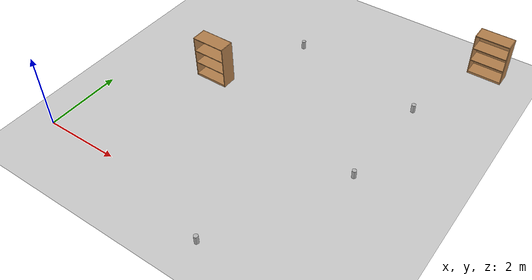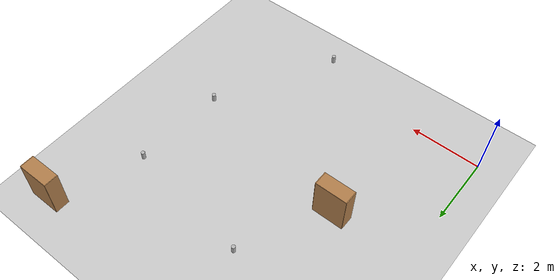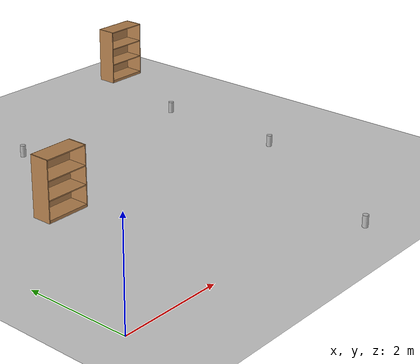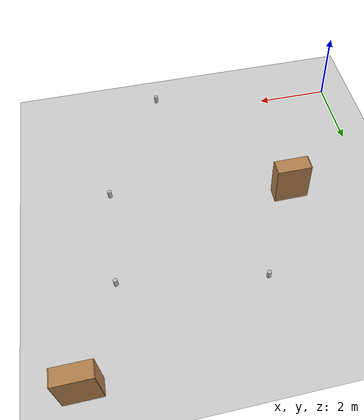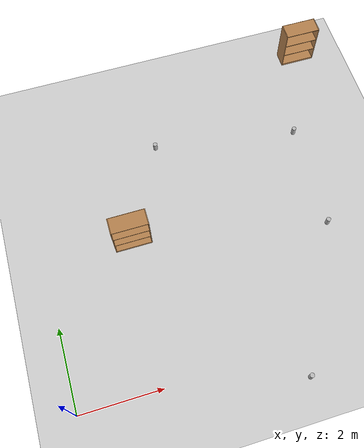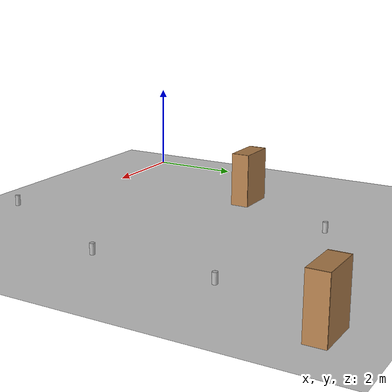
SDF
<sdf version="1.6">
 <world name="default">
  <model name="ground_plane">
   <static>1</static>
   <link name="link">
    <collision name="collision">
     <geometry><plane><normal>0 0 1</normal><size>100 100</size></plane></geometry>
     <surface>
      <contact><collide_bitmask>65535</collide_bitmask></contact>
      <friction><ode><mu>100</mu><mu2>50</mu2></ode></friction>
     </surface>
    </collision>
    <visual name="visual">
     <cast_shadows>0</cast_shadows>
     <geometry><plane><normal>0 0 1</normal><size>100 100</size></plane></geometry>
     <material>
      <script><uri>file://media/materials/scripts/gazebo.material</uri><name>Gazebo/Grey</name></script>
     </material>
    </visual>
   </link>
  </model>
  <model name="bookshelf">
   <static>1</static>
   <link name="link">
    <inertial><mass>1</mass></inertial>
    <collision name="back">
     <pose>0 0.005 0.6 0 -0 0</pose>
     <geometry><box><size>0.9 0.01 1.2</size></box></geometry>
    </collision>
    <visual name="visual1">
     <pose>0 0.005 0.6 0 -0 0</pose>
     <geometry><box><size>0.9 0.01 1.2</size></box></geometry>
     <material>
      <script><uri>file://media/materials/scripts/gazebo.material</uri><name>Gazebo/Wood</name></script>
     </material>
    </visual>
    <collision name="left_side">
     <pose>0.45 -0.195 0.6 0 -0 0</pose>
     <geometry><box><size>0.02 0.4 1.2</size></box></geometry>
    </collision>
    <visual name="visual2">
     <pose>0.45 -0.195 0.6 0 -0 0</pose>
     <geometry><box><size>0.02 0.4 1.2</size></box></geometry>
     <material>
      <script><uri>file://media/materials/scripts/gazebo.material</uri><name>Gazebo/Wood</name></script>
     </material>
    </visual>
    <collision name="right_side">
     <pose>-0.45 -0.195 0.6 0 -0 0</pose>
     <geometry><box><size>0.02 0.4 1.2</size></box></geometry>
    </collision>
    <visual name="visual3">
     <pose>-0.45 -0.195 0.6 0 -0 0</pose>
     <geometry><box><size>0.02 0.4 1.2</size></box></geometry>
     <material>
      <script><uri>file://media/materials/scripts/gazebo.material</uri><name>Gazebo/Wood</name></script>
     </material>
    </visual>
    <collision name="bottom">
     <pose>0 -0.195 0.03 0 -0 0</pose>
     <geometry><box><size>0.88 0.4 0.06</size></box></geometry>
    </collision>
    <visual name="visual4">
     <pose>0 -0.195 0.03 0 -0 0</pose>
     <geometry><box><size>0.88 0.4 0.06</size></box></geometry>
     <material>
      <script><uri>file://media/materials/scripts/gazebo.material</uri><name>Gazebo/Wood</name></script>
     </material>
    </visual>
    <collision name="top">
     <pose>0 -0.195 1.19 0 -0 0</pose>
     <geometry><box><size>0.88 0.4 0.02</size></box></geometry>
    </collision>
    <visual name="visual5">
     <pose>0 -0.195 1.19 0 -0 0</pose>
     <geometry><box><size>0.88 0.4 0.02</size></box></geometry>
     <material>
      <script><uri>file://media/materials/scripts/gazebo.material</uri><name>Gazebo/Wood</name></script>
     </material>
    </visual>
    <collision name="low_shelf">
     <pose>0 -0.195 0.43 0 -0 0</pose>
     <geometry><box><size>0.88 0.4 0.02</size></box></geometry>
    </collision>
    <visual name="visual6">
     <pose>0 -0.195 0.43 0 -0 0</pose>
     <geometry><box><size>0.88 0.4 0.02</size></box></geometry>
     <material>
      <script><uri>file://media/materials/scripts/gazebo.material</uri><name>Gazebo/Wood</name></script>
     </material>
    </visual>
    <collision name="high_shelf">
     <pose>0 -0.195 0.8 0 -0 0</pose>
     <geometry><box><size>0.88 0.4 0.02</size></box></geometry>
    </collision>
    <visual name="visual7">
     <pose>0 -0.195 0.8 0 -0 0</pose>
     <geometry><box><size>0.88 0.4 0.02</size></box></geometry>
     <material>
      <script><uri>file://media/materials/scripts/gazebo.material</uri><name>Gazebo/Wood</name></script>
     </material>
    </visual>
   </link>
   <pose>2.17838 3.83527 0 0 -0 0</pose>
  </model>
  <model name="beer">
   <link name="link">
    <pose>0 0 0.115 0 -0 0</pose>
    <inertial>
     <mass>0.39</mass>
     <inertia><ixx>0.00058</ixx><ixy>0</ixy><ixz>0</ixz><iyy>0.00058</iyy><iyz>0</iyz><izz>0.00019</izz></inertia>
    </inertial>
    <collision name="collision">
     <geometry><cylinder><radius>0.055</radius><length>0.23</length></cylinder></geometry>
    </collision>
    <visual name="visual">
     <geometry><cylinder><radius>0.055</radius><length>0.23</length></cylinder></geometry>
     <material>
      <script>
       <uri>model://beer/materials/scripts</uri>
       <uri>model://beer/materials/textures</uri>
       <name>Beer/Diffuse</name>
      </script>
     </material>
    </visual>
   </link>
   <pose>5.20317 -0.701846 0 0 -0 0</pose>
  </model>
  <model name="bookshelf_0">
   <static>1</static>
   <link name="link">
    <inertial><mass>1</mass></inertial>
    <collision name="back">
     <pose>0 0.005 0.6 0 -0 0</pose>
     <geometry><box><size>0.9 0.01 1.2</size></box></geometry>
    </collision>
    <visual name="visual1">
     <pose>0 0.005 0.6 0 -0 0</pose>
     <geometry><box><size>0.9 0.01 1.2</size></box></geometry>
     <material>
      <script><uri>file://media/materials/scripts/gazebo.material</uri><name>Gazebo/Wood</name></script>
     </material>
    </visual>
    <collision name="left_side">
     <pose>0.45 -0.195 0.6 0 -0 0</pose>
     <geometry><box><size>0.02 0.4 1.2</size></box></geometry>
    </collision>
    <visual name="visual2">
     <pose>0.45 -0.195 0.6 0 -0 0</pose>
     <geometry><box><size>0.02 0.4 1.2</size></box></geometry>
     <material>
      <script><uri>file://media/materials/scripts/gazebo.material</uri><name>Gazebo/Wood</name></script>
     </material>
    </visual>
    <collision name="right_side">
     <pose>-0.45 -0.195 0.6 0 -0 0</pose>
     <geometry><box><size>0.02 0.4 1.2</size></box></geometry>
    </collision>
    <visual name="visual3">
     <pose>-0.45 -0.195 0.6 0 -0 0</pose>
     <geometry><box><size>0.02 0.4 1.2</size></box></geometry>
     <material>
      <script><uri>file://media/materials/scripts/gazebo.material</uri><name>Gazebo/Wood</name></script>
     </material>
    </visual>
    <collision name="bottom">
     <pose>0 -0.195 0.03 0 -0 0</pose>
     <geometry><box><size>0.88 0.4 0.06</size></box></geometry>
    </collision>
    <visual name="visual4">
     <pose>0 -0.195 0.03 0 -0 0</pose>
     <geometry><box><size>0.88 0.4 0.06</size></box></geometry>
     <material>
      <script><uri>file://media/materials/scripts/gazebo.material</uri><name>Gazebo/Wood</name></script>
     </material>
    </visual>
    <collision name="top">
     <pose>0 -0.195 1.19 0 -0 0</pose>
     <geometry><box><size>0.88 0.4 0.02</size></box></geometry>
    </collision>
    <visual name="visual5">
     <pose>0 -0.195 1.19 0 -0 0</pose>
     <geometry><box><size>0.88 0.4 0.02</size></box></geometry>
     <material>
      <script><uri>file://media/materials/scripts/gazebo.material</uri><name>Gazebo/Wood</name></script>
     </material>
    </visual>
    <collision name="low_shelf">
     <pose>0 -0.195 0.43 0 -0 0</pose>
     <geometry><box><size>0.88 0.4 0.02</size></box></geometry>
    </collision>
    <visual name="visual6">
     <pose>0 -0.195 0.43 0 -0 0</pose>
     <geometry><box><size>0.88 0.4 0.02</size></box></geometry>
     <material>
      <script><uri>file://media/materials/scripts/gazebo.material</uri><name>Gazebo/Wood</name></script>
     </material>
    </visual>
    <collision name="high_shelf">
     <pose>0 -0.195 0.8 0 -0 0</pose>
     <geometry><box><size>0.88 0.4 0.02</size></box></geometry>
    </collision>
    <visual name="visual7">
     <pose>0 -0.195 0.8 0 -0 0</pose>
     <geometry><box><size>0.88 0.4 0.02</size></box></geometry>
     <material>
      <script><uri>file://media/materials/scripts/gazebo.material</uri><name>Gazebo/Wood</name></script>
     </material>
    </visual>
   </link>
   <pose>8.03253 7.9961 0 0 -0 0</pose>
  </model>
  <model name="beer_0">
   <link name="link">
    <pose>0 0 0.115 0 -0 0</pose>
    <inertial>
     <mass>0.39</mass>
     <inertia><ixx>0.00058</ixx><ixy>0</ixy><ixz>0</ixz><iyy>0.00058</iyy><iyz>0</iyz><izz>0.00019</izz></inertia>
    </inertial>
    <collision name="collision">
     <geometry><cylinder><radius>0.055</radius><length>0.23</length></cylinder></geometry>
    </collision>
    <visual name="visual">
     <geometry><cylinder><radius>0.055</radius><length>0.23</length></cylinder></geometry>
     <material>
      <script>
       <uri>model://beer/materials/scripts</uri>
       <uri>model://beer/materials/textures</uri>
       <name>Beer/Diffuse</name>
      </script>
     </material>
    </visual>
   </link>
   <pose>6.97209 2.6887 0 0 -0 0</pose>
  </model>
  <model name="beer_0_clone">
   <link name="link">
    <pose>0 0 0.115 0 -0 0</pose>
    <inertial>
     <mass>0.39</mass>
     <inertia><ixx>0.00058</ixx><ixy>0</ixy><ixz>0</ixz><iyy>0.00058</iyy><iyz>0</iyz><izz>0.00019</izz></inertia>
    </inertial>
    <collision name="collision">
     <geometry><cylinder><radius>0.055</radius><length>0.23</length></cylinder></geometry>
    </collision>
    <visual name="visual">
     <geometry><cylinder><radius>0.055</radius><length>0.23</length></cylinder></geometry>
     <material>
      <script>
       <uri>model://beer/materials/scripts</uri>
       <uri>model://beer/materials/textures</uri>
       <name>Beer/Diffuse</name>
      </script>
     </material>
    </visual>
   </link>
   <pose>7.08138 5.40114 0 0 -0 0</pose>
  </model>
  <model name="beer_0_clone_0">
   <link name="link">
    <pose>0 0 0.115 0 -0 0</pose>
    <inertial>
     <mass>0.39</mass>
     <inertia><ixx>0.00058</ixx><ixy>0</ixy><ixz>0</ixz><iyy>0.00058</iyy><iyz>0</iyz><izz>0.00019</izz></inertia>
    </inertial>
    <collision name="collision">
     <geometry><cylinder><radius>0.055</radius><length>0.23</length></cylinder></geometry>
    </collision>
    <visual name="visual">
     <geometry><cylinder><radius>0.055</radius><length>0.23</length></cylinder></geometry>
     <material>
      <script>
       <uri>model://beer/materials/scripts</uri>
       <uri>model://beer/materials/textures</uri>
       <name>Beer/Diffuse</name>
      </script>
     </material>
    </visual>
   </link>
   <pose>3.40409 6 0 0 -0 0</pose>
  </model>
 </world>
</sdf>
